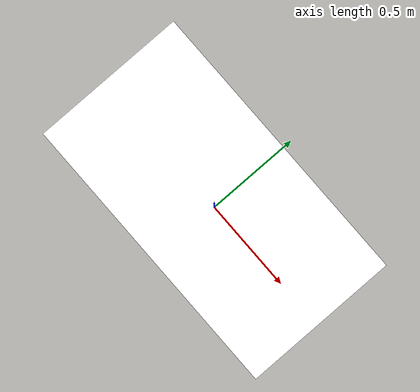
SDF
<?xml version="1.0" ?>
<sdf version="1.7">
  <model name="table">
    <static>true</static>
    <link name="link">

      <collision name="surface">
        <pose>0 0 0.705 0 0 0</pose> <geometry>
          <box>
            <size>1.5 0.8 0.03</size>
          </box>
        </geometry>
      </collision>

      <visual name="surface_visual">
        <pose>0 0 0.705 0 0 0</pose> <geometry>
          <box>
            <size>1.5 0.8 0.03</size>
          </box>
        </geometry>
        <material>
          <ambient>1 1 1 1</ambient> <diffuse>1 1 1 1</diffuse>
        </material>
      </visual>

      <visual name="leg1">
        <pose>0.7 0.35 0.345 0 0 0</pose> <geometry>
            <box><size>0.05 0.05 0.69</size></box> </geometry>
        <material> <ambient>1 0.5 0 1</ambient>
          <diffuse>1 0.5 0 1</diffuse> </material>
      </visual>

      <visual name="leg2">
        <pose>-0.7 0.35 0.345 0 0 0</pose>
        <geometry>
            <box><size>0.05 0.05 0.69</size></box>
        </geometry>
        <material>
          <ambient>1 0.5 0 1</ambient>
          <diffuse>1 0.5 0 1</diffuse>
        </material>
      </visual>

      <visual name="leg3">
        <pose>0.7 -0.35 0.345 0 0 0</pose>
        <geometry>
            <box><size>0.05 0.05 0.69</size></box>
        </geometry>
        <material>
          <ambient>1 0.5 0 1</ambient>
          <diffuse>1 0.5 0 1</diffuse>
        </material>
      </visual>

      <visual name="leg4">
        <pose>-0.7 -0.35 0.345 0 0 0</pose>
        <geometry>
            <box><size>0.05 0.05 0.69</size></box>
        </geometry>
        <material>
          <ambient>1 0.5 0 1</ambient>
          <diffuse>1 0.5 0 1</diffuse>
        </material>
      </visual>

    </link>
  </model>
</sdf>
